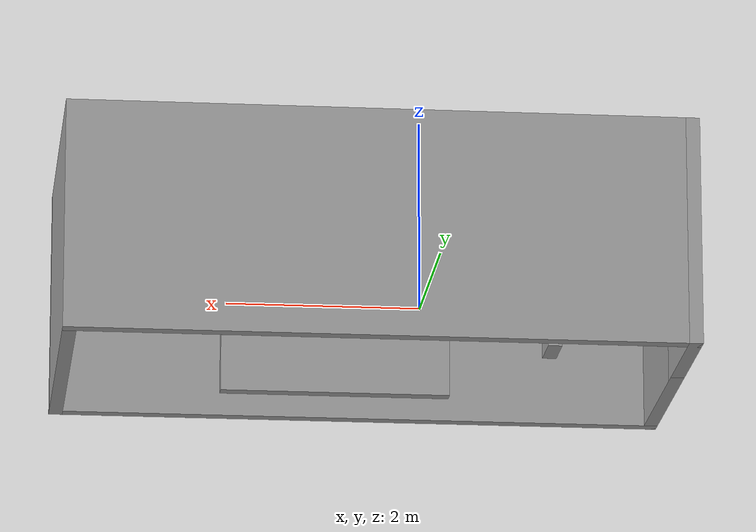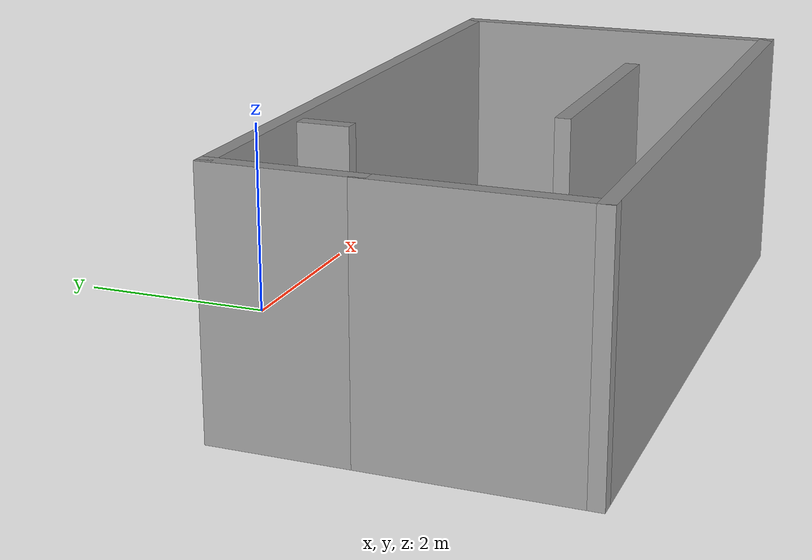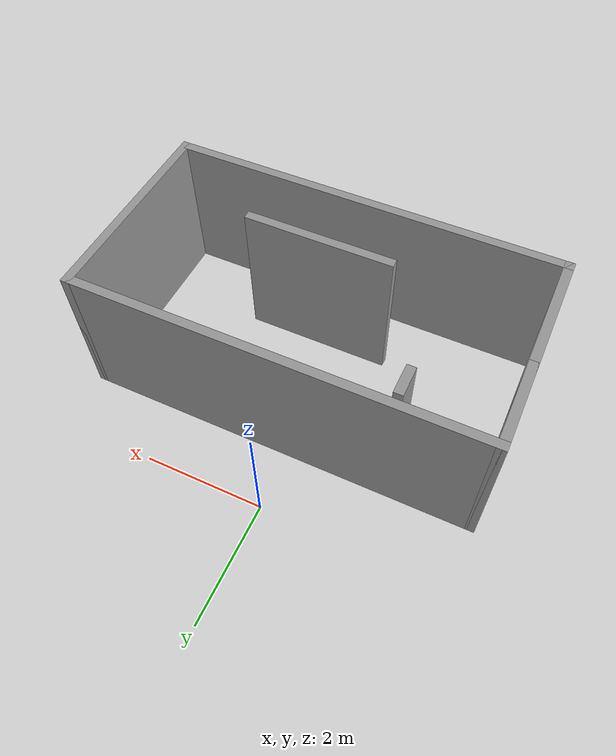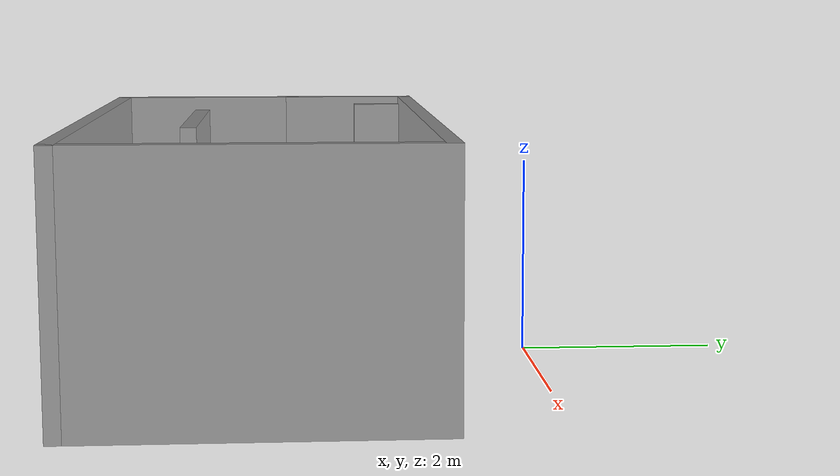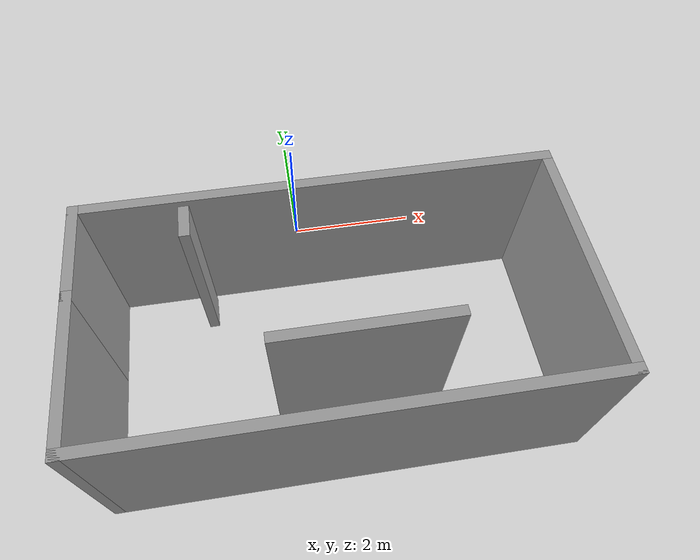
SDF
<?xml version='1.0'?>
<sdf version='1.7'>
  <model name='house'>
    <pose>0.26 -2.2475 0 0 -0 0</pose>
    <link name='Wall_0'>
      <collision name='Wall_0_Collision'>
        <geometry>
          <box>
            <size>1.5 0.15 2.5</size>
          </box>
        </geometry>
        <pose>0 0 1.25 0 -0 0</pose>
      </collision>
      <visual name='Wall_0_Visual'>
        <pose>0 0 1.25 0 -0 0</pose>
        <geometry>
          <box>
            <size>1.5 0.15 2.5</size>
          </box>
        </geometry>
        <material>
          <script>
            <uri>file://media/materials/scripts/gazebo.material</uri>
            <name>Gazebo/Grey</name>
          </script>
          <ambient>1 1 1 1</ambient>
        </material>
        <meta>
          <layer>0</layer>
        </meta>
      </visual>
      <pose>-3.3 0.5025 0 0 -0 1.5708</pose>
    </link>
    <link name='Wall_1'>
      <collision name='Wall_1_Collision'>
        <geometry>
          <box>
            <size>6.75 0.15 2.5</size>
          </box>
        </geometry>
        <pose>0 0 1.25 0 -0 0</pose>
      </collision>
      <visual name='Wall_1_Visual'>
        <pose>0 0 1.25 0 -0 0</pose>
        <geometry>
          <box>
            <size>6.75 0.15 2.5</size>
          </box>
        </geometry>
        <material>
          <script>
            <uri>file://media/materials/scripts/gazebo.material</uri>
            <name>Gazebo/Grey</name>
          </script>
          <ambient>1 1 1 1</ambient>
        </material>
        <meta>
          <layer>0</layer>
        </meta>
      </visual>
      <pose>-0 1.1775 0 0 -0 0</pose>
    </link>
    <link name='Wall_10'>
      <collision name='Wall_10_Collision'>
        <geometry>
          <box>
            <size>2.5 0.15 2.5</size>
          </box>
        </geometry>
        <pose>0 0 1.25 0 -0 0</pose>
      </collision>
      <visual name='Wall_10_Visual'>
        <pose>0 0 1.25 0 -0 0</pose>
        <geometry>
          <box>
            <size>2.5 0.15 2.5</size>
          </box>
        </geometry>
        <material>
          <script>
            <uri>file://media/materials/scripts/gazebo.material</uri>
            <name>Gazebo/Grey</name>
          </script>
          <ambient>1 1 1 1</ambient>
        </material>
        <meta>
          <layer>0</layer>
        </meta>
      </visual>
      <pose>0.310875 -1.1218 0 0 -0 0</pose>
    </link>
    <link name='Wall_2'>
      <collision name='Wall_2_Collision'>
        <geometry>
          <box>
            <size>3.5 0.15 2.5</size>
          </box>
        </geometry>
        <pose>0 0 1.25 0 -0 0</pose>
      </collision>
      <visual name='Wall_2_Visual'>
        <pose>0 0 1.25 0 -0 0</pose>
        <geometry>
          <box>
            <size>3.5 0.15 2.5</size>
          </box>
        </geometry>
        <material>
          <script>
            <uri>file://media/materials/scripts/gazebo.material</uri>
            <name>Gazebo/Grey</name>
          </script>
          <ambient>1 1 1 1</ambient>
        </material>
        <meta>
          <layer>0</layer>
        </meta>
      </visual>
      <pose>3.3 -0.4975 0 0 -0 -1.5708</pose>
    </link>
    <link name='Wall_3'>
      <collision name='Wall_3_Collision'>
        <geometry>
          <box>
            <size>6.75 0.15 2.5</size>
          </box>
        </geometry>
        <pose>0 0 1.25 0 -0 0</pose>
      </collision>
      <visual name='Wall_3_Visual'>
        <pose>0 0 1.25 0 -0 0</pose>
        <geometry>
          <box>
            <size>6.75 0.15 2.5</size>
          </box>
        </geometry>
        <material>
          <script>
            <uri>file://media/materials/scripts/gazebo.material</uri>
            <name>Gazebo/Grey</name>
          </script>
          <ambient>1 1 1 1</ambient>
        </material>
        <meta>
          <layer>0</layer>
        </meta>
      </visual>
      <pose>-0 -2.1725 0 0 -0 3.14159</pose>
    </link>
    <link name='Wall_4'>
      <collision name='Wall_4_Collision'>
        <geometry>
          <box>
            <size>2.15 0.15 2.5</size>
          </box>
        </geometry>
        <pose>0 0 1.25 0 -0 0</pose>
      </collision>
      <visual name='Wall_4_Visual'>
        <pose>0 0 1.25 0 -0 0</pose>
        <geometry>
          <box>
            <size>2.15 0.15 2.5</size>
          </box>
        </geometry>
        <material>
          <script>
            <uri>file://media/materials/scripts/gazebo.material</uri>
            <name>Gazebo/Grey</name>
          </script>
          <ambient>1 1 1 1</ambient>
        </material>
        <meta>
          <layer>0</layer>
        </meta>
      </visual>
      <pose>-3.3 -1.1725 0 0 -0 1.5708</pose>
    </link>
    <link name='Wall_6'>
      <collision name='Wall_6_Collision'>
        <geometry>
          <box>
            <size>0.5 0.15 2.5</size>
          </box>
        </geometry>
        <pose>0 0 1.25 0 -0 0</pose>
      </collision>
      <visual name='Wall_6_Visual'>
        <pose>0 0 1.25 0 -0 0</pose>
        <geometry>
          <box>
            <size>0.5 0.15 2.5</size>
          </box>
        </geometry>
        <material>
          <script>
            <uri>file://media/materials/scripts/gazebo.material</uri>
            <name>Gazebo/Grey</name>
          </script>
          <ambient>1 1 1 1</ambient>
        </material>
        <meta>
          <layer>0</layer>
        </meta>
      </visual>
      <pose>-1.82955 0.77245 0 0 -0 1.5708</pose>
    </link>
    <static>1</static>
  </model>
</sdf>
